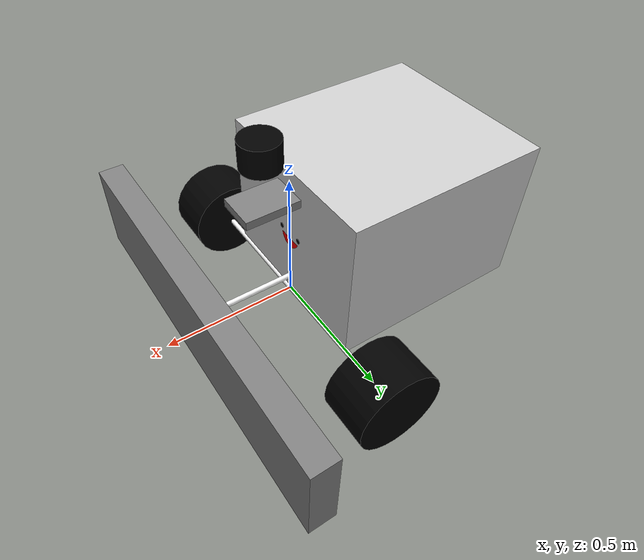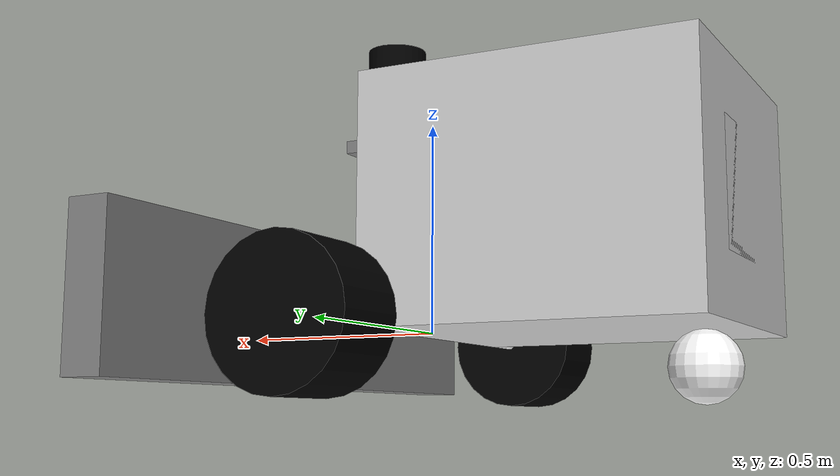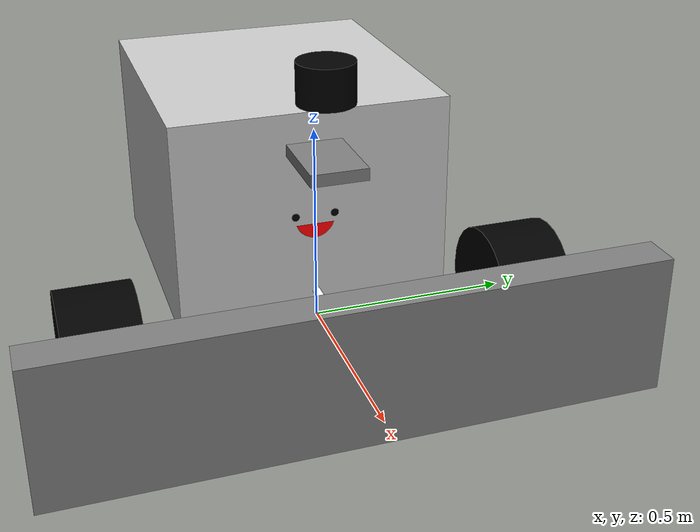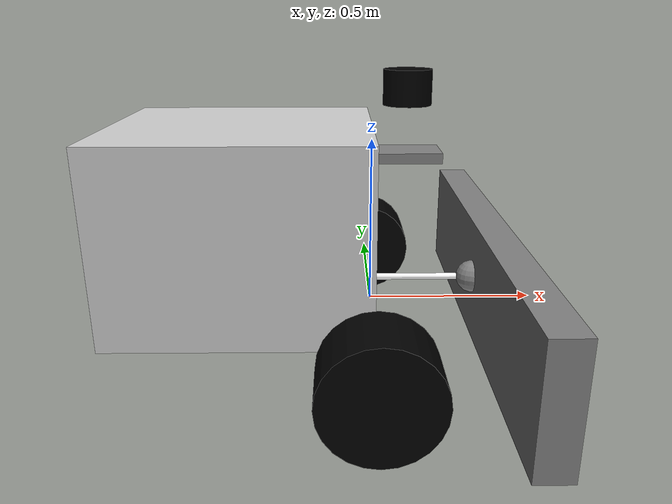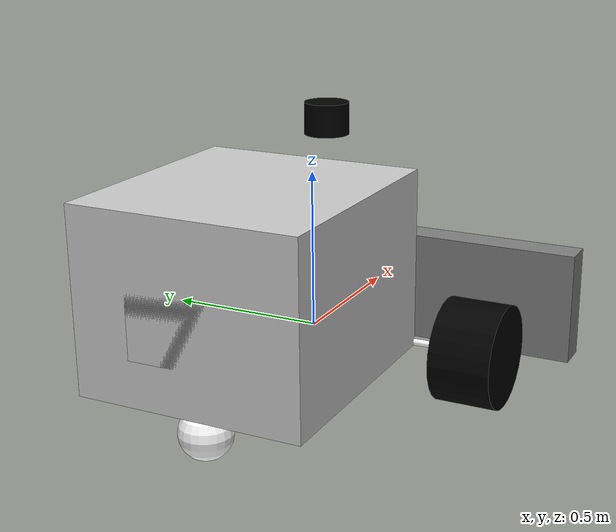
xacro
<?xml version="1.0"?>
<robot xmlns:xacro="http://www.ros.org/wiki/xacro"  name="snowplow">

    <xacro:arg name="use_sim_time" default="true"/>

    <xacro:include filename="$(find nav2_outdoor_example)/urdf/robot_core.xacro" />
    <xacro:include filename="$(find nav2_outdoor_example)/urdf/lidar_ign.xacro" />
    <xacro:include filename="$(find nav2_outdoor_example)/urdf/imu_ign.xacro" />
    <xacro:include filename="$(find nav2_outdoor_example)/urdf/gps_ign.xacro"/>
    <xacro:include filename="$(find nav2_outdoor_example)/urdf/plowblade.xacro"/>
    <xacro:include filename="$(find nav2_outdoor_example)/urdf/battery.xacro"/>
    <xacro:include filename="$(find nav2_outdoor_example)/urdf/ros2_control_ign.xacro" />

    <xacro:include filename="$(find nav2_outdoor_example)/urdf/face.xacro" />

</robot>

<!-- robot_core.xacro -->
<robot xmlns:xacro="http://www.ros.org/wiki/xacro" >

    <xacro:include filename="inertial_macros.xacro"/>

    <xacro:property name="chassis_length" value="0.750"/>
    <xacro:property name="chassis_width" value="0.696"/>
    <xacro:property name="chassis_height" value="0.556"/>
    <xacro:property name="chassis_mass" value="3.0"/>
    <xacro:property name="wheel_radius" value="0.16"/>
    <xacro:property name="wheel_thickness" value="0.19"/>
    <xacro:property name="wheel_mass" value="1.0"/>
    <xacro:property name="wheel_offset_x" value="0.226"/>
    <xacro:property name="wheel_offset_y" value="${chassis_width/2 + wheel_thickness + 0.01}"/>
    <xacro:property name="wheel_offset_z" value="0.01"/>
    <xacro:property name="caster_wheel_radius" value="0.01"/>
    <xacro:property name="caster_wheel_mass" value="0.2"/>
    <xacro:property name="caster_wheel_offset_x" value="0.075"/>
    <xacro:property name="caster_wheel_offset_z" value="${wheel_offset_z - wheel_radius + caster_wheel_radius}"/>

    <material name="white">
        <color rgba="1 1 1 1" />
    </material>

    <material name="orange">
        <color rgba="1 0.3 0.1 1"/>
    </material>

    <material name="blue">
        <color rgba="0.2 0.2 1 1"/>
    </material>

    <material name="black">
        <color rgba="0 0 0 1"/>
    </material>

    <material name="red">
        <color rgba="1 0 0 1"/>
    </material>

    <material name="grey">
        <color rgba="0.5 0.5 0.5 1.0"/>
    </material>

     <material name="lightgrey">
         <color rgba="0.8 0.8 0.8 1.0"/>
    </material>

    <material name="greynavy">
        <color rgba="0.25 0.25 0.375 1.0"/>
    </material>

    <!-- BASE LINK -->

    <link name="base_link">

    </link>

    <!-- BASE_FOOTPRINT LINK -->

    <joint name="base_footprint_joint" type="fixed">
        <parent link="base_link"/>
        <child link="base_footprint"/>
        <origin xyz="0 0 0" rpy="0 0 0"/>
    </joint>

    <link name="base_footprint">
    </link>

    <!-- CHASSIS LINK -->

    <joint name="chassis_joint" type="fixed">
        <parent link="base_link"/>
        <child link="chassis"/>
        <origin xyz="0 0 ${-wheel_offset_z}"/>
    </joint>

    <link name="chassis">
        <visual>
            <origin xyz="${-chassis_length/2} 0 ${chassis_height/2}"/>
            <geometry>
                <box size="${chassis_length} ${chassis_width} ${chassis_height}"/>
            </geometry>
            <material name="lightgrey"/>
        </visual>
        <collision>
            <origin xyz="${-chassis_length/2} 0 ${chassis_height/2}"/>
            <geometry>
                <box size="${chassis_length} ${chassis_width} ${chassis_height}"/>
            </geometry>
        </collision>
        <xacro:inertial_box mass="${chassis_mass}" x="${chassis_length}" y="${chassis_width}" z="${chassis_height}">
            <origin xyz="${-chassis_length/2} 0 ${chassis_height/2}" rpy="0 0 0"/>
        </xacro:inertial_box>
    </link>

    <gazebo reference="chassis">
        <material>Gazebo/LightGrey</material>
    </gazebo>

    <!-- LEFT WHEEL LINK -->

    <joint name="left_wheel_joint" type="continuous">
        <parent link="base_link"/>
        <child link="left_wheel"/>
        <origin xyz="0 ${wheel_offset_y} 0" rpy="-${pi/2} 0 0" />
        <axis xyz="0 0 1"/>
        <dynamics damping="0.2"/>
    </joint>

    <link name="left_wheel">
        <visual>
            <geometry>
                <cylinder radius="${wheel_radius}" length="${wheel_thickness}"/>
            </geometry>
            <material name="black"/>
        </visual>
        <collision>
            <geometry>
                <sphere radius="${wheel_radius}"/>
            </geometry>
            <surface>
                <friction>
                <ode>
                    <mu>10000.0</mu>
                    <mu2>10000.0</mu2>
                </ode>
                </friction>
                <contact>
                <ode>
                    <min_depth>0.003</min_depth>
                </ode>
                </contact>
            </surface>
        </collision>
        <xacro:inertial_cylinder mass="${wheel_mass}" length="${wheel_thickness}" radius="${wheel_radius}">
            <origin xyz="0 0 0" rpy="0 0 0"/>
        </xacro:inertial_cylinder>
    </link>

    <gazebo reference="left_wheel">
        <material>Gazebo/Black</material>
    </gazebo>

    <!-- RIGHT WHEEL LINK -->

    <joint name="right_wheel_joint" type="continuous">
        <parent link="base_link"/>
        <child link="right_wheel"/>
        <origin xyz="0 -${wheel_offset_y} 0" rpy="${pi/2} 0 0" />
        <axis xyz="0 0 -1"/>
    </joint>

    <link name="right_wheel">
        <visual>
            <geometry>
                <cylinder radius="${wheel_radius}" length="${wheel_thickness}"/>
            </geometry>
            <material name="black"/>
        </visual>
        <collision>
            <geometry>
                <sphere radius="${wheel_radius}"/>
            </geometry>
            <surface>
                <friction>
                <ode>
                    <mu>10000.0</mu>
                    <mu2>10000.0</mu2>
                </ode>
                </friction>
                <contact>
                <ode>
                    <min_depth>0.003</min_depth>
                </ode>
                </contact>
            </surface>
        </collision>
        <xacro:inertial_cylinder mass="${wheel_mass}" length="${wheel_thickness}" radius="${wheel_radius}">
            <origin xyz="0 0 0" rpy="0 0 0"/>
        </xacro:inertial_cylinder>
    </link>

    <gazebo reference="right_wheel">
        <material>Gazebo/Black</material>
    </gazebo>

    <joint name="wheel_joint" type="fixed">
        <parent link="base_link"/>
        <child link="wheel_bar"/>
        <origin xyz="0 0 0" rpy="${pi/2} 0 0" />
        <axis xyz="0 0 -1"/>
    </joint>

    <link name="wheel_bar">
        <visual>
            <geometry>
                <cylinder radius="0.01" length="${chassis_width + wheel_thickness + 0.01}"/>
            </geometry>
            <material name="white"/>
        </visual>
        <collision>
            <geometry>
                <cylinder radius="0.01" length="${chassis_width + wheel_thickness + 0.01}"/>
            </geometry>
        </collision>
    </link>

    <gazebo reference="wheel_bar">
        <material>Gazebo/white</material>
    </gazebo>

    <!-- CASTER WHEEL LINK -->

    <joint name="caster_wheel_joint" type="fixed">
        <parent link="chassis"/>
        <child link="caster_wheel"/>
        <origin xyz="${-chassis_length + 0.1} 0 ${-wheel_radius/2}"/>
    </joint>

    <link name="caster_wheel">
        <visual>
            <geometry>
                <sphere radius="${wheel_radius/2}"/>
            </geometry>
            <material name="white"/>
        </visual>
        <collision>
            <geometry>
                <sphere radius="${wheel_radius/2}"/>
            </geometry>
        </collision>
        <xacro:inertial_sphere mass="${caster_wheel_mass}" radius="${wheel_radius/2}">
            <origin xyz="0 0 0" rpy="0 0 0"/>
        </xacro:inertial_sphere>
    </link>

</robot>

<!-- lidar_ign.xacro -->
<robot xmlns:xacro="http://www.ros.org/wiki/xacro" >

    <!-- LIDAR -->

    <joint name="laser_joint" type="fixed">
        <parent link="base_link"/>
        <child link="laser_frame"/>
        <origin xyz="0.10 0 ${-wheel_offset_z + 0.66}" rpy="0 0 0"/>
    </joint>

    <link name="laser_frame">
        <visual>
            <geometry>
                <cylinder radius="0.05" length="0.04"/>
            </geometry>
            <material name="black"/>
        </visual>
        <visual>
            <origin xyz="0 0 0"/>
            <geometry>
                <cylinder radius="0.07" length="0.1"/>
            </geometry>
            <material name="black"/>
        </visual>
        <collision>
            <geometry>
                <cylinder radius="0.05" length="0.04"/>
            </geometry>
        </collision>
        <xacro:inertial_cylinder mass="0.1" length="0.04" radius="0.05">
            <origin xyz="0 0 0" rpy="0 0 0"/>
        </xacro:inertial_cylinder>
    </link>

    <gazebo>
        <plugin
        filename="libignition-gazebo-sensors-system.so"
        name="ignition::gazebo::systems::Sensors">
        <render_engine>ogre2</render_engine>
        </plugin>
    </gazebo>

    <gazebo reference="laser_frame">
        <material>Gazebo/Black</material>
        <sensor name="laser_frame" type="gpu_lidar">
            <pose relative_to='laser_frame'> 0 0 0 0 0 4.713 </pose>
            <topic>scan</topic>
            <visualize>true</visualize>
            <update_rate>5</update_rate>
            <ray>
                <scan>
                    <horizontal>
                        <samples>360</samples>
                        <min_angle>0</min_angle>
                        <min_angle>-3.14</min_angle>
                        <max_angle>3.14</max_angle>
                    </horizontal>
                </scan>
                <range>
                    <min>0.08</min>
                    <max>20.0</max>
                </range>
            </ray>
            <always_on>1</always_on>
        </sensor>
    </gazebo>

    <!-- LIDAR HOLDER -->

    <joint name="mount_joint" type="fixed">
        <parent link="chassis"/>
        <child link="lidar_holder"/>
        <origin xyz="0 0 0.466" rpy="0 0 0"/>
    </joint>

    <link name="lidar_holder">
         <visual>
            <geometry>
                <box size="0.40 0.14 0.03"/>
            </geometry>
            <material name="grey"/>
        </visual>
        <collision>
            <geometry>
                <box size="0.25 0.14 0.03"/>
            </geometry>
        </collision>
        <xacro:inertial_box mass="0.01" x="0.25" y="0.14" z="0.03">
            <origin xyz="0 0 0" rpy="0 0 0"/>
        </xacro:inertial_box>

    </link>

    <gazebo reference="lidar_holder">
        <material>Gazebo/Grey</material>
    </gazebo>

</robot>

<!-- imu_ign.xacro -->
<robot xmlns:xacro="http://www.ros.org/wiki/xacro" >

    <joint name="imu_joint" type="fixed">
        <parent link="chassis"/>
        <child link="imu_link"/>
        <origin xyz="-0.375 0 0.278" rpy="0 0.18 0"/>
    </joint>

    <link name="imu_link">
        <visual>
            <geometry>
                <box size="0.07 0.03 0.03"/>
            </geometry>
            <material name="black"/>
        </visual>
        <visual>
            <origin xyz="0 0 -0.05"/>
            <geometry>
                <cylinder radius="0.002" length="0.1"/>
            </geometry>
            <material name="black"/>
        </visual>
    </link>
    <gazebo>
        <plugin filename="libignition-gazebo-imu-system.so" name="ignition::gazebo::systems::Imu"/>
    </gazebo>
    <gazebo reference="imu_link">
        <sensor name="imu" type="imu">
        <always_on>1</always_on>
        <update_rate>25</update_rate> <!-- To simulate orientation coming from dual GNSS -->
        <visualize>false</visualize>
        <topic>imu</topic>
        <ignition_frame_id>imu_link</ignition_frame_id>
        </sensor>
    </gazebo>
</robot>

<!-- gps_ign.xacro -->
<robot xmlns:xacro="http://www.ros.org/wiki/xacro" >
  <joint name="gps_joint" type="fixed">
    <parent link="chassis"/>
    <child link="gps_link"/>
    <origin xyz="-0.375 0 0.278" rpy="0 0.18 0"/>
  </joint>
  <link name="gps_link">
    <visual>
      <geometry>
          <box size="0.010 0.01 0.01"/>
      </geometry>
      <material name="black"/>
    </visual>
  </link>
  <gazebo>
      <plugin filename="ignition-gazebo-navsat-system" name="ignition::gazebo::systems::NavSat"/>
  </gazebo>
  <gazebo reference="gps_link">
      <material>Gazebo/Black</material>
      <sensor name="navsat" type="navsat">
            <always_on>1</always_on>
            <update_rate>25.0</update_rate>
            <topic>gps/fix</topic>
            <ignition_frame_id>gps_link</ignition_frame_id>
      </sensor>
  </gazebo>
</robot>

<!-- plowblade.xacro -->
<robot xmlns:xacro="http://ros.org/wiki/xacro">

  <!-- Define parameters -->
  <xacro:property name="plow_height" value="${chassis_height - 0.2}"/> <!-- Height of the snowplow blade -->
  <xacro:property name="plow_width" value="1.5"/> <!-- Width of the snowplow blade -->
  <xacro:property name="plow_length" value="0.1"/> <!-- Length of the snowplow blade -->
  <xacro:property name="sphere_radius" value="0.05"/> <!-- Radius of the sphere -->
  <xacro:property name="sphere_height" value="${chassis_height/2 - 0.1}"/> <!-- Height of the sphere -->
  <xacro:property name="bar_length" value="${0.32-sphere_radius}"/> <!-- Height of the sphere -->

  <!-- Define materials -->

<!-- plow holder -->

  <joint name="blade_bar_joint" type="fixed">
        <parent link="chassis"/>
        <child link="blade_bar"/>
        <origin xyz="${bar_length/2} 0 ${chassis_height/2 - 0.2}" rpy="0 ${pi/2} 0" />
    </joint>

    <link name="blade_bar">
        <visual>
            <geometry>
                <cylinder radius="0.01" length="${bar_length}"/>
            </geometry>
            <material name="white"/>
        </visual>
        <collision>
            <geometry>
                <cylinder radius="0.01" length="${bar_length}"/>
            </geometry>
        </collision>
    </link>

    <gazebo reference="blade_bar">
        <material>Gazebo/white</material>
    </gazebo>

    <!-- plow  -->
    <joint name="blade_joint" type="fixed">
        <parent link ="blade_bar" />
        <child link ="snowplow_blade_link" />
        <origin xyz="0 0 ${bar_length/2 + sphere_radius}" rpy="0 ${-pi/2} 0" />
    </joint>

  <!-- Define the link -->
  <link name="snowplow_blade_link">
    <!-- Visual representation of the snowplow blade -->
    <visual>
      <origin xyz="0 0 0" rpy="0 0 0"/>
      <!-- Sphere for the back part -->
      <geometry>
        <sphere radius="${sphere_radius}" scale="1 9 1"/>
      </geometry>
      <!-- Apply grey material -->
      <material name="grey"/>
    </visual>
    <!-- Collision representation (same as visual for simplicity) -->
    <collision>
      <origin xyz="0 0 0" rpy="0 0 0"/>
      <!-- Sphere for the back part -->
      <geometry>
        <sphere radius="${sphere_radius}" scale="1 2 1"/>
      </geometry>
    </collision>
    <!-- Front part of the snowplow blade (box) -->
    <visual>
      <origin xyz="${plow_length / 2} 0 -0.01" rpy="0 0 0"/>
      <geometry>
        <box size="${plow_length} ${plow_width} ${plow_height}"/>
      </geometry>
      <!-- Apply grey material -->
      <material name="grey"/>
    </visual>
    <!-- Collision representation (same as visual for simplicity) -->
    <collision>
      <origin xyz="${plow_length / 2} 0 -0.01" rpy="0 0 0"/>
      <geometry>
        <box size="${plow_length} ${plow_width} ${plow_height}"/>
      </geometry>
    </collision>
    <xacro:inertial_box mass="1.0" x="${plow_length}" y="${plow_width}" z="${plow_height}">
      <origin xyz="${plow_length / 2} 0 -0.01" rpy="0 0 0"/>
    </xacro:inertial_box>
  </link>

  <!-- Gazebo specific properties -->
  <gazebo reference="snowplow_blade_link">
    <material>Gazebo/Grey</material> <!-- Gazebo built-in material -->
  </gazebo>

</robot>

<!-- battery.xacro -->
<robot xmlns:xacro="http://www.ros.org/wiki/xacro" >

    <joint name="battery_joint" type="fixed">
        <parent link="chassis"/>
        <child link="battery_pack"/>
        <origin xyz="${-chassis_length + (chassis_length/4) } 0 ${chassis_height/2}" rpy="0 0 0"/>
    </joint>

    <link name="battery_pack">
        <visual>
            <origin xyz="0 0 0"/>
            <geometry>
                <box size="${chassis_length/2} ${chassis_width/2} ${chassis_height/2}"/>
            </geometry>
            <material name="lightgrey"/>
        </visual>
        <collision>
            <origin xyz="0 0 0"/>
            <geometry>
                <box size="${chassis_length/2} ${chassis_width/2} ${chassis_height/2}"/>
            </geometry>
        </collision>
        <xacro:inertial_box mass="2.0" x="0.3" y="0.5" z="0.3">
            <origin xyz="${chassis_length/2} ${chassis_width/2} -0.5" rpy="0 0 0"/>
        </xacro:inertial_box>
    </link>

    <gazebo reference="battery_pack">
        <material>Gazebo/LightGrey</material>
    </gazebo>

</robot>

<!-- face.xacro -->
<robot xmlns:xacro="http://www.ros.org/wiki/xacro" >

    <joint name="face_joint" type="fixed">
        <parent link="chassis"/>
        <child link="face_link"/>
        <origin xyz="0 0 ${chassis_height/2}" rpy="0 0 0"/>
    </joint>

    <link name="face_link">
        <visual>
            <origin xyz="0 0.05 0.01" rpy="0 ${pi/2} 0"/>
            <geometry>
                <cylinder radius="0.01" length="0.002"/>
            </geometry>
            <material name="black"/>
        </visual>

        <visual>
            <origin xyz="0 -0.05 0.01" rpy="0 ${pi/2} 0"/>
            <geometry>
                <cylinder radius="0.01" length="0.002"/>
            </geometry>
            <material name="black"/>
        </visual>

        <visual>
            <origin xyz="-0.011 0 -0.00" rpy="0 ${1.5} 0"/>
            <geometry>
                <cylinder radius="0.05" length="0.02"/>
            </geometry>
            <material name="red"/>
        </visual>
    </link>

    <gazebo reference="face_link">
        <material>Gazebo/Black</material>
    </gazebo>

</robot>
